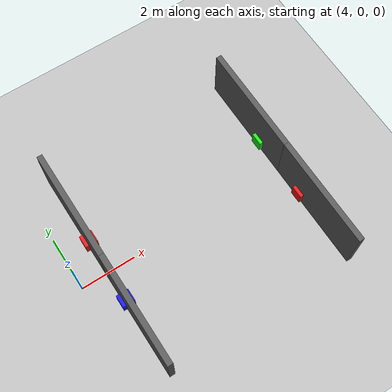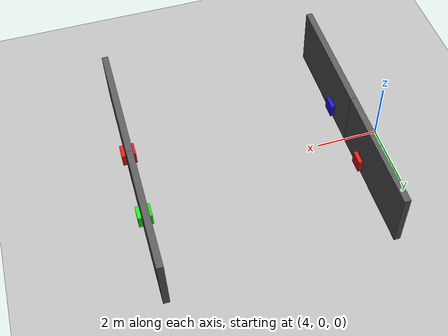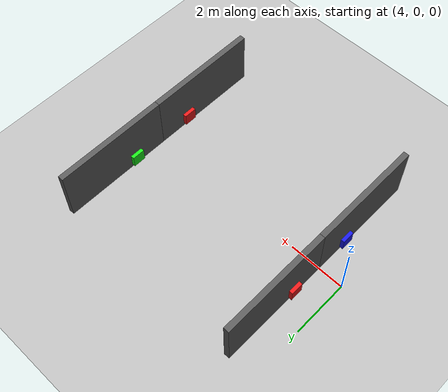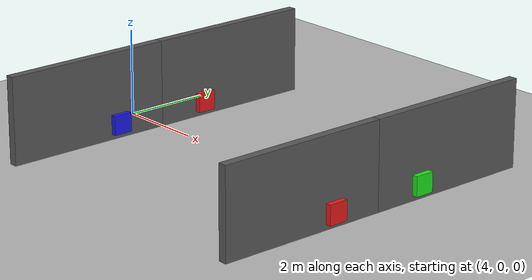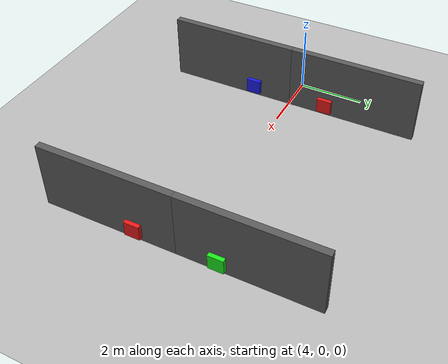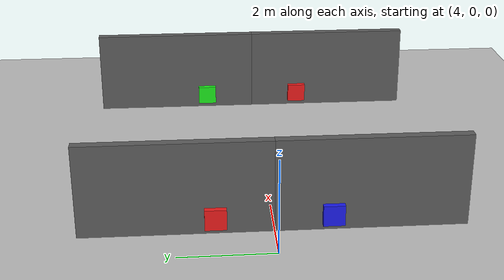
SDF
<?xml version="1.0" ?>
<sdf version="1.9">
  <world name="warehouse_inventory">

    <physics name="1ms" type="ignored">
      <max_step_size>0.004</max_step_size>
      <real_time_factor>1.0</real_time_factor>
    </physics>

    <plugin filename="gz-sim-physics-system" name="gz::sim::systems::Physics"/>
    <plugin filename="gz-sim-user-commands-system" name="gz::sim::systems::UserCommands"/>
    <plugin filename="gz-sim-scene-broadcaster-system" name="gz::sim::systems::SceneBroadcaster"/>
    <plugin filename="gz-sim-sensors-system" name="gz::sim::systems::Sensors">
      <render_engine>ogre2</render_engine>
    </plugin>

    <light type="directional" name="sun">
      <cast_shadows>true</cast_shadows>
      <pose>0 0 10 0 0 0</pose>
      <diffuse>0.85 0.85 0.85 1</diffuse>
      <specular>0.2 0.2 0.2 1</specular>
      <direction>-0.4 0.2 -0.9</direction>
    </light>

    <model name="ground_plane">
      <static>true</static>
      <link name="link">
        <collision name="collision">
          <geometry>
            <plane>
              <normal>0 0 1</normal>
              <size>50 50</size>
            </plane>
          </geometry>
        </collision>
        <visual name="visual">
          <geometry>
            <plane>
              <normal>0 0 1</normal>
              <size>50 50</size>
            </plane>
          </geometry>
          <material>
            <ambient>0.65 0.65 0.65 1</ambient>
            <diffuse>0.72 0.72 0.72 1</diffuse>
          </material>
        </visual>
      </link>
    </model>

    <model name="rack_1_left">
      <static>true</static>
      <pose>5 2 1 0 0 0</pose>
      <link name="link">
        <visual name="visual">
          <geometry><box><size>0.2 4.0 2.0</size></box></geometry>
          <material>
            <ambient>0.25 0.25 0.25 1</ambient>
            <diffuse>0.35 0.35 0.35 1</diffuse>
          </material>
        </visual>
        <collision name="collision">
          <geometry><box><size>0.2 4.0 2.0</size></box></geometry>
        </collision>
      </link>
    </model>

    <model name="rack_1_right">
      <static>true</static>
      <pose>5 -2 1 0 0 0</pose>
      <link name="link">
        <visual name="visual">
          <geometry><box><size>0.2 4.0 2.0</size></box></geometry>
          <material>
            <ambient>0.25 0.25 0.25 1</ambient>
            <diffuse>0.35 0.35 0.35 1</diffuse>
          </material>
        </visual>
        <collision name="collision">
          <geometry><box><size>0.2 4.0 2.0</size></box></geometry>
        </collision>
      </link>
    </model>

    <model name="rack_2_left">
      <static>true</static>
      <pose>12 2 1 0 0 0</pose>
      <link name="link">
        <visual name="visual">
          <geometry><box><size>0.2 4.0 2.0</size></box></geometry>
          <material>
            <ambient>0.25 0.25 0.25 1</ambient>
            <diffuse>0.35 0.35 0.35 1</diffuse>
          </material>
        </visual>
        <collision name="collision">
          <geometry><box><size>0.2 4.0 2.0</size></box></geometry>
        </collision>
      </link>
    </model>

    <model name="rack_2_right">
      <static>true</static>
      <pose>12 -2 1 0 0 0</pose>
      <link name="link">
        <visual name="visual">
          <geometry><box><size>0.2 4.0 2.0</size></box></geometry>
          <material>
            <ambient>0.25 0.25 0.25 1</ambient>
            <diffuse>0.35 0.35 0.35 1</diffuse>
          </material>
        </visual>
        <collision name="collision">
          <geometry><box><size>0.2 4.0 2.0</size></box></geometry>
        </collision>
      </link>
    </model>

    <model name="red_box_1">
      <static>true</static>
      <pose>5 1.2 0.35 0 0 0</pose>
      <link name="link">
        <visual name="visual">
          <geometry><box><size>0.45 0.45 0.45</size></box></geometry>
          <material><ambient>0.8 0.1 0.1 1</ambient><diffuse>0.9 0.1 0.1 1</diffuse></material>
        </visual>
        <collision name="collision">
          <geometry><box><size>0.45 0.45 0.45</size></box></geometry>
        </collision>
      </link>
    </model>

    <model name="blue_box_1">
      <static>true</static>
      <pose>5 -1.2 0.35 0 0 0</pose>
      <link name="link">
        <visual name="visual">
          <geometry><box><size>0.45 0.45 0.45</size></box></geometry>
          <material><ambient>0.1 0.1 0.8 1</ambient><diffuse>0.1 0.1 0.9 1</diffuse></material>
        </visual>
        <collision name="collision">
          <geometry><box><size>0.45 0.45 0.45</size></box></geometry>
        </collision>
      </link>
    </model>

    <model name="green_box_1">
      <static>true</static>
      <pose>12 1.2 0.35 0 0 0</pose>
      <link name="link">
        <visual name="visual">
          <geometry><box><size>0.45 0.45 0.45</size></box></geometry>
          <material><ambient>0.1 0.8 0.1 1</ambient><diffuse>0.1 0.9 0.1 1</diffuse></material>
        </visual>
        <collision name="collision">
          <geometry><box><size>0.45 0.45 0.45</size></box></geometry>
        </collision>
      </link>
    </model>

    <model name="red_box_2">
      <static>true</static>
      <pose>12 -1.2 0.35 0 0 0</pose>
      <link name="link">
        <visual name="visual">
          <geometry><box><size>0.45 0.45 0.45</size></box></geometry>
          <material><ambient>0.8 0.1 0.1 1</ambient><diffuse>0.9 0.1 0.1 1</diffuse></material>
        </visual>
        <collision name="collision">
          <geometry><box><size>0.45 0.45 0.45</size></box></geometry>
        </collision>
      </link>
    </model>

  </world>
</sdf>
